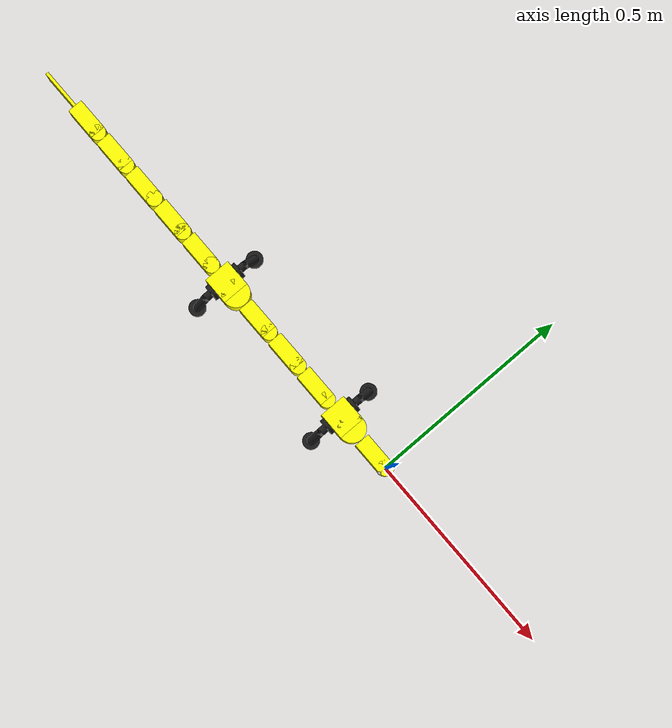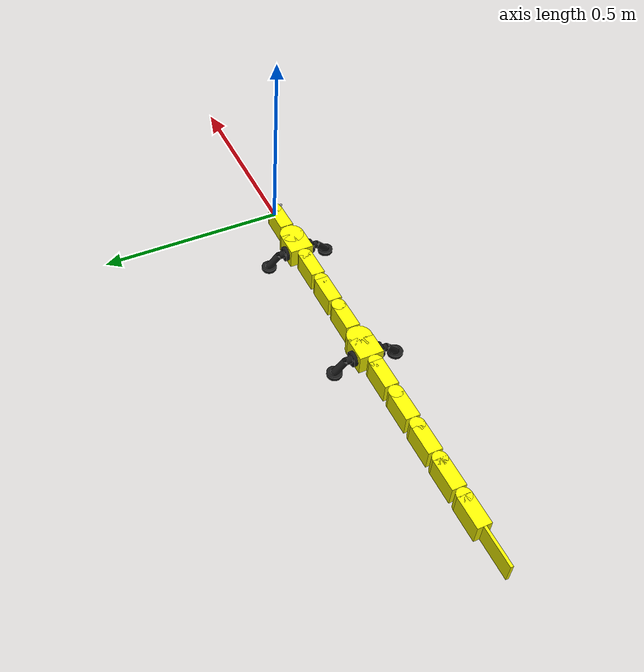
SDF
<?xml version="1.0" ?>
<sdf version="1.6">
<world>
  <model name="salamandra_robotica">
    <pose>0.0 0.0 0.0 0.0 0.0 0.0</pose>
    <link name="link_body_0">
      <pose>-0.0 0.0 0.0 0.0 0.0 0.0</pose>
      <inertial>
        <pose>0.0 0.0 0.0 0.0 0.0 0.0</pose>
        <mass>0.167578125</mass>
        <inertia>
          <ixx>6.188171386718749e-05</ixx>
          <ixy>0</ixy>
          <ixz>0</ixz>
          <iyy>0.00013443344116210939</iyy>
          <iyz>0</iyz>
          <izz>0.00011182785034179688</izz>
        </inertia>
      </inertial>
      <collision name="link_body_0_box_collision">
        <pose>-0.040625 0.0 0.0 0.0 0.0 0.0</pose>
        <geometry>
          <box>
            <size>0.08125 0.0375 0.055</size>
          </box>
        </geometry>
      </collision>
      <collision name="link_body_0_cylinder_collision">
        <pose>0.0 0.0 0.0 0.0 0.0 0.0</pose>
        <geometry>
          <cylinder>
            <radius>0.01875 0.0 0.0</radius>
            <length>0.055 0.0 0.0</length>
          </cylinder>
        </geometry>
      </collision>
      <visual name="link_body_0_box_visual">
        <pose>-0.040625 0.0 0.0 0.0 0.0 0.0</pose>
        <geometry>
          <box>
            <size>0.08125 0.0375 0.055</size>
          </box>
        </geometry>
        <material>
          <ambient>1.0 1.0 0.0 1.0</ambient>
          <diffuse>1.0 1.0 0.0 1.0</diffuse>
          <specular>1.0 1.0 0.0 1.0</specular>
          <emissive>1.0 1.0 0.0 1.0</emissive>
        </material>
      </visual>
      <visual name="link_body_0_cylinder_visual">
        <pose>0.0 0.0 0.0 0.0 0.0 0.0</pose>
        <geometry>
          <cylinder>
            <radius>0.01875 0.0 0.0</radius>
            <length>0.055 0.0 0.0</length>
          </cylinder>
        </geometry>
        <material>
          <ambient>1.0 1.0 0.0 1.0</ambient>
          <diffuse>1.0 1.0 0.0 1.0</diffuse>
          <specular>1.0 1.0 0.0 1.0</specular>
          <emissive>1.0 1.0 0.0 1.0</emissive>
        </material>
      </visual>
    </link>
    <link name="link_body_1">
      <pose>-0.115 0.0 0.0 0.0 0.0 0.0</pose>
      <inertial>
        <pose>0.0 0.0 0.0 0.0 0.0 0.0</pose>
        <mass>0.24250488281250004</mass>
        <inertia>
          <ixx>0.00014816322088241578</ixx>
          <ixy>0</ixy>
          <ixz>0</ixz>
          <iyy>0.0001523569291830063</iyy>
          <iyz>0</iyz>
          <izz>0.00017825727164745336</izz>
        </inertia>
      </inertial>
      <collision name="link_body_1_box_collision">
        <pose>-0.033593750000000006 0.0 0.0 0.0 0.0 0.0</pose>
        <geometry>
          <box>
            <size>0.06718750000000001 0.065625 0.055</size>
          </box>
        </geometry>
      </collision>
      <collision name="link_body_1_cylinder_collision">
        <pose>0.0 0.0 0.0 0.0 0.0 0.0</pose>
        <geometry>
          <cylinder>
            <radius>0.0328125 0.0 0.0</radius>
            <length>0.055 0.0 0.0</length>
          </cylinder>
        </geometry>
      </collision>
      <visual name="link_body_1_box_visual">
        <pose>-0.033593750000000006 0.0 0.0 0.0 0.0 0.0</pose>
        <geometry>
          <box>
            <size>0.06718750000000001 0.065625 0.055</size>
          </box>
        </geometry>
        <material>
          <ambient>1.0 1.0 0.0 1.0</ambient>
          <diffuse>1.0 1.0 0.0 1.0</diffuse>
          <specular>1.0 1.0 0.0 1.0</specular>
          <emissive>1.0 1.0 0.0 1.0</emissive>
        </material>
      </visual>
      <visual name="link_body_1_cylinder_visual">
        <pose>0.0 0.0 0.0 0.0 0.0 0.0</pose>
        <geometry>
          <cylinder>
            <radius>0.0328125 0.0 0.0</radius>
            <length>0.055 0.0 0.0</length>
          </cylinder>
        </geometry>
        <material>
          <ambient>1.0 1.0 0.0 1.0</ambient>
          <diffuse>1.0 1.0 0.0 1.0</diffuse>
          <specular>1.0 1.0 0.0 1.0</specular>
          <emissive>1.0 1.0 0.0 1.0</emissive>
        </material>
      </visual>
    </link>
    <link name="link_body_2">
      <pose>-0.2 0.0 0.0 0.0 0.0 0.0</pose>
      <inertial>
        <pose>0.0 0.0 0.0 0.0 0.0 0.0</pose>
        <mass>0.167578125</mass>
        <inertia>
          <ixx>6.188171386718749e-05</ixx>
          <ixy>0</ixy>
          <ixz>0</ixz>
          <iyy>0.00013443344116210939</iyy>
          <iyz>0</iyz>
          <izz>0.00011182785034179688</izz>
        </inertia>
      </inertial>
      <collision name="link_body_2_box_collision">
        <pose>-0.040625 0.0 0.0 0.0 0.0 0.0</pose>
        <geometry>
          <box>
            <size>0.08125 0.0375 0.055</size>
          </box>
        </geometry>
      </collision>
      <collision name="link_body_2_cylinder_collision">
        <pose>0.0 0.0 0.0 0.0 0.0 0.0</pose>
        <geometry>
          <cylinder>
            <radius>0.01875 0.0 0.0</radius>
            <length>0.055 0.0 0.0</length>
          </cylinder>
        </geometry>
      </collision>
      <visual name="link_body_2_box_visual">
        <pose>-0.040625 0.0 0.0 0.0 0.0 0.0</pose>
        <geometry>
          <box>
            <size>0.08125 0.0375 0.055</size>
          </box>
        </geometry>
        <material>
          <ambient>1.0 1.0 0.0 1.0</ambient>
          <diffuse>1.0 1.0 0.0 1.0</diffuse>
          <specular>1.0 1.0 0.0 1.0</specular>
          <emissive>1.0 1.0 0.0 1.0</emissive>
        </material>
      </visual>
      <visual name="link_body_2_cylinder_visual">
        <pose>0.0 0.0 0.0 0.0 0.0 0.0</pose>
        <geometry>
          <cylinder>
            <radius>0.01875 0.0 0.0</radius>
            <length>0.055 0.0 0.0</length>
          </cylinder>
        </geometry>
        <material>
          <ambient>1.0 1.0 0.0 1.0</ambient>
          <diffuse>1.0 1.0 0.0 1.0</diffuse>
          <specular>1.0 1.0 0.0 1.0</specular>
          <emissive>1.0 1.0 0.0 1.0</emissive>
        </material>
      </visual>
    </link>
    <link name="link_body_3">
      <pose>-0.30000000000000004 0.0 0.0 0.0 0.0 0.0</pose>
      <inertial>
        <pose>0.0 0.0 0.0 0.0 0.0 0.0</pose>
        <mass>0.167578125</mass>
        <inertia>
          <ixx>6.188171386718749e-05</ixx>
          <ixy>0</ixy>
          <ixz>0</ixz>
          <iyy>0.00013443344116210939</iyy>
          <iyz>0</iyz>
          <izz>0.00011182785034179688</izz>
        </inertia>
      </inertial>
      <collision name="link_body_3_box_collision">
        <pose>-0.040625 0.0 0.0 0.0 0.0 0.0</pose>
        <geometry>
          <box>
            <size>0.08125 0.0375 0.055</size>
          </box>
        </geometry>
      </collision>
      <collision name="link_body_3_cylinder_collision">
        <pose>0.0 0.0 0.0 0.0 0.0 0.0</pose>
        <geometry>
          <cylinder>
            <radius>0.01875 0.0 0.0</radius>
            <length>0.055 0.0 0.0</length>
          </cylinder>
        </geometry>
      </collision>
      <visual name="link_body_3_box_visual">
        <pose>-0.040625 0.0 0.0 0.0 0.0 0.0</pose>
        <geometry>
          <box>
            <size>0.08125 0.0375 0.055</size>
          </box>
        </geometry>
        <material>
          <ambient>1.0 1.0 0.0 1.0</ambient>
          <diffuse>1.0 1.0 0.0 1.0</diffuse>
          <specular>1.0 1.0 0.0 1.0</specular>
          <emissive>1.0 1.0 0.0 1.0</emissive>
        </material>
      </visual>
      <visual name="link_body_3_cylinder_visual">
        <pose>0.0 0.0 0.0 0.0 0.0 0.0</pose>
        <geometry>
          <cylinder>
            <radius>0.01875 0.0 0.0</radius>
            <length>0.055 0.0 0.0</length>
          </cylinder>
        </geometry>
        <material>
          <ambient>1.0 1.0 0.0 1.0</ambient>
          <diffuse>1.0 1.0 0.0 1.0</diffuse>
          <specular>1.0 1.0 0.0 1.0</specular>
          <emissive>1.0 1.0 0.0 1.0</emissive>
        </material>
      </visual>
    </link>
    <link name="link_body_4">
      <pose>-0.4 0.0 0.0 0.0 0.0 0.0</pose>
      <inertial>
        <pose>0.0 0.0 0.0 0.0 0.0 0.0</pose>
        <mass>0.167578125</mass>
        <inertia>
          <ixx>6.188171386718749e-05</ixx>
          <ixy>0</ixy>
          <ixz>0</ixz>
          <iyy>0.00013443344116210939</iyy>
          <iyz>0</iyz>
          <izz>0.00011182785034179688</izz>
        </inertia>
      </inertial>
      <collision name="link_body_4_box_collision">
        <pose>-0.040625 0.0 0.0 0.0 0.0 0.0</pose>
        <geometry>
          <box>
            <size>0.08125 0.0375 0.055</size>
          </box>
        </geometry>
      </collision>
      <collision name="link_body_4_cylinder_collision">
        <pose>0.0 0.0 0.0 0.0 0.0 0.0</pose>
        <geometry>
          <cylinder>
            <radius>0.01875 0.0 0.0</radius>
            <length>0.055 0.0 0.0</length>
          </cylinder>
        </geometry>
      </collision>
      <visual name="link_body_4_box_visual">
        <pose>-0.040625 0.0 0.0 0.0 0.0 0.0</pose>
        <geometry>
          <box>
            <size>0.08125 0.0375 0.055</size>
          </box>
        </geometry>
        <material>
          <ambient>1.0 1.0 0.0 1.0</ambient>
          <diffuse>1.0 1.0 0.0 1.0</diffuse>
          <specular>1.0 1.0 0.0 1.0</specular>
          <emissive>1.0 1.0 0.0 1.0</emissive>
        </material>
      </visual>
      <visual name="link_body_4_cylinder_visual">
        <pose>0.0 0.0 0.0 0.0 0.0 0.0</pose>
        <geometry>
          <cylinder>
            <radius>0.01875 0.0 0.0</radius>
            <length>0.055 0.0 0.0</length>
          </cylinder>
        </geometry>
        <material>
          <ambient>1.0 1.0 0.0 1.0</ambient>
          <diffuse>1.0 1.0 0.0 1.0</diffuse>
          <specular>1.0 1.0 0.0 1.0</specular>
          <emissive>1.0 1.0 0.0 1.0</emissive>
        </material>
      </visual>
    </link>
    <link name="link_body_5">
      <pose>-0.515 0.0 0.0 0.0 0.0 0.0</pose>
      <inertial>
        <pose>0.0 0.0 0.0 0.0 0.0 0.0</pose>
        <mass>0.24250488281250004</mass>
        <inertia>
          <ixx>0.00014816322088241578</ixx>
          <ixy>0</ixy>
          <ixz>0</ixz>
          <iyy>0.0001523569291830063</iyy>
          <iyz>0</iyz>
          <izz>0.00017825727164745336</izz>
        </inertia>
      </inertial>
      <collision name="link_body_5_box_collision">
        <pose>-0.033593750000000006 0.0 0.0 0.0 0.0 0.0</pose>
        <geometry>
          <box>
            <size>0.06718750000000001 0.065625 0.055</size>
          </box>
        </geometry>
      </collision>
      <collision name="link_body_5_cylinder_collision">
        <pose>0.0 0.0 0.0 0.0 0.0 0.0</pose>
        <geometry>
          <cylinder>
            <radius>0.0328125 0.0 0.0</radius>
            <length>0.055 0.0 0.0</length>
          </cylinder>
        </geometry>
      </collision>
      <visual name="link_body_5_box_visual">
        <pose>-0.033593750000000006 0.0 0.0 0.0 0.0 0.0</pose>
        <geometry>
          <box>
            <size>0.06718750000000001 0.065625 0.055</size>
          </box>
        </geometry>
        <material>
          <ambient>1.0 1.0 0.0 1.0</ambient>
          <diffuse>1.0 1.0 0.0 1.0</diffuse>
          <specular>1.0 1.0 0.0 1.0</specular>
          <emissive>1.0 1.0 0.0 1.0</emissive>
        </material>
      </visual>
      <visual name="link_body_5_cylinder_visual">
        <pose>0.0 0.0 0.0 0.0 0.0 0.0</pose>
        <geometry>
          <cylinder>
            <radius>0.0328125 0.0 0.0</radius>
            <length>0.055 0.0 0.0</length>
          </cylinder>
        </geometry>
        <material>
          <ambient>1.0 1.0 0.0 1.0</ambient>
          <diffuse>1.0 1.0 0.0 1.0</diffuse>
          <specular>1.0 1.0 0.0 1.0</specular>
          <emissive>1.0 1.0 0.0 1.0</emissive>
        </material>
      </visual>
    </link>
    <link name="link_body_6">
      <pose>-0.6000000000000001 0.0 0.0 0.0 0.0 0.0</pose>
      <inertial>
        <pose>0.0 0.0 0.0 0.0 0.0 0.0</pose>
        <mass>0.167578125</mass>
        <inertia>
          <ixx>6.188171386718749e-05</ixx>
          <ixy>0</ixy>
          <ixz>0</ixz>
          <iyy>0.00013443344116210939</iyy>
          <iyz>0</iyz>
          <izz>0.00011182785034179688</izz>
        </inertia>
      </inertial>
      <collision name="link_body_6_box_collision">
        <pose>-0.040625 0.0 0.0 0.0 0.0 0.0</pose>
        <geometry>
          <box>
            <size>0.08125 0.0375 0.055</size>
          </box>
        </geometry>
      </collision>
      <collision name="link_body_6_cylinder_collision">
        <pose>0.0 0.0 0.0 0.0 0.0 0.0</pose>
        <geometry>
          <cylinder>
            <radius>0.01875 0.0 0.0</radius>
            <length>0.055 0.0 0.0</length>
          </cylinder>
        </geometry>
      </collision>
      <visual name="link_body_6_box_visual">
        <pose>-0.040625 0.0 0.0 0.0 0.0 0.0</pose>
        <geometry>
          <box>
            <size>0.08125 0.0375 0.055</size>
          </box>
        </geometry>
        <material>
          <ambient>1.0 1.0 0.0 1.0</ambient>
          <diffuse>1.0 1.0 0.0 1.0</diffuse>
          <specular>1.0 1.0 0.0 1.0</specular>
          <emissive>1.0 1.0 0.0 1.0</emissive>
        </material>
      </visual>
      <visual name="link_body_6_cylinder_visual">
        <pose>0.0 0.0 0.0 0.0 0.0 0.0</pose>
        <geometry>
          <cylinder>
            <radius>0.01875 0.0 0.0</radius>
            <length>0.055 0.0 0.0</length>
          </cylinder>
        </geometry>
        <material>
          <ambient>1.0 1.0 0.0 1.0</ambient>
          <diffuse>1.0 1.0 0.0 1.0</diffuse>
          <specular>1.0 1.0 0.0 1.0</specular>
          <emissive>1.0 1.0 0.0 1.0</emissive>
        </material>
      </visual>
    </link>
    <link name="link_body_7">
      <pose>-0.7000000000000001 0.0 0.0 0.0 0.0 0.0</pose>
      <inertial>
        <pose>0.0 0.0 0.0 0.0 0.0 0.0</pose>
        <mass>0.167578125</mass>
        <inertia>
          <ixx>6.188171386718749e-05</ixx>
          <ixy>0</ixy>
          <ixz>0</ixz>
          <iyy>0.00013443344116210939</iyy>
          <iyz>0</iyz>
          <izz>0.00011182785034179688</izz>
        </inertia>
      </inertial>
      <collision name="link_body_7_box_collision">
        <pose>-0.040625 0.0 0.0 0.0 0.0 0.0</pose>
        <geometry>
          <box>
            <size>0.08125 0.0375 0.055</size>
          </box>
        </geometry>
      </collision>
      <collision name="link_body_7_cylinder_collision">
        <pose>0.0 0.0 0.0 0.0 0.0 0.0</pose>
        <geometry>
          <cylinder>
            <radius>0.01875 0.0 0.0</radius>
            <length>0.055 0.0 0.0</length>
          </cylinder>
        </geometry>
      </collision>
      <visual name="link_body_7_box_visual">
        <pose>-0.040625 0.0 0.0 0.0 0.0 0.0</pose>
        <geometry>
          <box>
            <size>0.08125 0.0375 0.055</size>
          </box>
        </geometry>
        <material>
          <ambient>1.0 1.0 0.0 1.0</ambient>
          <diffuse>1.0 1.0 0.0 1.0</diffuse>
          <specular>1.0 1.0 0.0 1.0</specular>
          <emissive>1.0 1.0 0.0 1.0</emissive>
        </material>
      </visual>
      <visual name="link_body_7_cylinder_visual">
        <pose>0.0 0.0 0.0 0.0 0.0 0.0</pose>
        <geometry>
          <cylinder>
            <radius>0.01875 0.0 0.0</radius>
            <length>0.055 0.0 0.0</length>
          </cylinder>
        </geometry>
        <material>
          <ambient>1.0 1.0 0.0 1.0</ambient>
          <diffuse>1.0 1.0 0.0 1.0</diffuse>
          <specular>1.0 1.0 0.0 1.0</specular>
          <emissive>1.0 1.0 0.0 1.0</emissive>
        </material>
      </visual>
    </link>
    <link name="link_body_8">
      <pose>-0.8 0.0 0.0 0.0 0.0 0.0</pose>
      <inertial>
        <pose>0.0 0.0 0.0 0.0 0.0 0.0</pose>
        <mass>0.167578125</mass>
        <inertia>
          <ixx>6.188171386718749e-05</ixx>
          <ixy>0</ixy>
          <ixz>0</ixz>
          <iyy>0.00013443344116210939</iyy>
          <iyz>0</iyz>
          <izz>0.00011182785034179688</izz>
        </inertia>
      </inertial>
      <collision name="link_body_8_box_collision">
        <pose>-0.040625 0.0 0.0 0.0 0.0 0.0</pose>
        <geometry>
          <box>
            <size>0.08125 0.0375 0.055</size>
          </box>
        </geometry>
      </collision>
      <collision name="link_body_8_cylinder_collision">
        <pose>0.0 0.0 0.0 0.0 0.0 0.0</pose>
        <geometry>
          <cylinder>
            <radius>0.01875 0.0 0.0</radius>
            <length>0.055 0.0 0.0</length>
          </cylinder>
        </geometry>
      </collision>
      <visual name="link_body_8_box_visual">
        <pose>-0.040625 0.0 0.0 0.0 0.0 0.0</pose>
        <geometry>
          <box>
            <size>0.08125 0.0375 0.055</size>
          </box>
        </geometry>
        <material>
          <ambient>1.0 1.0 0.0 1.0</ambient>
          <diffuse>1.0 1.0 0.0 1.0</diffuse>
          <specular>1.0 1.0 0.0 1.0</specular>
          <emissive>1.0 1.0 0.0 1.0</emissive>
        </material>
      </visual>
      <visual name="link_body_8_cylinder_visual">
        <pose>0.0 0.0 0.0 0.0 0.0 0.0</pose>
        <geometry>
          <cylinder>
            <radius>0.01875 0.0 0.0</radius>
            <length>0.055 0.0 0.0</length>
          </cylinder>
        </geometry>
        <material>
          <ambient>1.0 1.0 0.0 1.0</ambient>
          <diffuse>1.0 1.0 0.0 1.0</diffuse>
          <specular>1.0 1.0 0.0 1.0</specular>
          <emissive>1.0 1.0 0.0 1.0</emissive>
        </material>
      </visual>
    </link>
    <link name="link_body_9">
      <pose>-0.9 0.0 0.0 0.0 0.0 0.0</pose>
      <inertial>
        <pose>0.0 0.0 0.0 0.0 0.0 0.0</pose>
        <mass>0.167578125</mass>
        <inertia>
          <ixx>6.188171386718749e-05</ixx>
          <ixy>0</ixy>
          <ixz>0</ixz>
          <iyy>0.00013443344116210939</iyy>
          <iyz>0</iyz>
          <izz>0.00011182785034179688</izz>
        </inertia>
      </inertial>
      <collision name="link_body_9_box_collision">
        <pose>-0.040625 0.0 0.0 0.0 0.0 0.0</pose>
        <geometry>
          <box>
            <size>0.08125 0.0375 0.055</size>
          </box>
        </geometry>
      </collision>
      <collision name="link_body_9_cylinder_collision">
        <pose>0.0 0.0 0.0 0.0 0.0 0.0</pose>
        <geometry>
          <cylinder>
            <radius>0.01875 0.0 0.0</radius>
            <length>0.055 0.0 0.0</length>
          </cylinder>
        </geometry>
      </collision>
      <visual name="link_body_9_box_visual">
        <pose>-0.040625 0.0 0.0 0.0 0.0 0.0</pose>
        <geometry>
          <box>
            <size>0.08125 0.0375 0.055</size>
          </box>
        </geometry>
        <material>
          <ambient>1.0 1.0 0.0 1.0</ambient>
          <diffuse>1.0 1.0 0.0 1.0</diffuse>
          <specular>1.0 1.0 0.0 1.0</specular>
          <emissive>1.0 1.0 0.0 1.0</emissive>
        </material>
      </visual>
      <visual name="link_body_9_cylinder_visual">
        <pose>0.0 0.0 0.0 0.0 0.0 0.0</pose>
        <geometry>
          <cylinder>
            <radius>0.01875 0.0 0.0</radius>
            <length>0.055 0.0 0.0</length>
          </cylinder>
        </geometry>
        <material>
          <ambient>1.0 1.0 0.0 1.0</ambient>
          <diffuse>1.0 1.0 0.0 1.0</diffuse>
          <specular>1.0 1.0 0.0 1.0</specular>
          <emissive>1.0 1.0 0.0 1.0</emissive>
        </material>
      </visual>
    </link>
    <link name="link_body_10">
      <pose>-1.0 0.0 0.0 0.0 0.0 0.0</pose>
      <inertial>
        <pose>0.0 0.0 0.0 0.0 0.0 0.0</pose>
        <mass>0.167578125</mass>
        <inertia>
          <ixx>6.188171386718749e-05</ixx>
          <ixy>0</ixy>
          <ixz>0</ixz>
          <iyy>0.00013443344116210939</iyy>
          <iyz>0</iyz>
          <izz>0.00011182785034179688</izz>
        </inertia>
      </inertial>
      <collision name="link_body_10_box_collision">
        <pose>-0.040625 0.0 0.0 0.0 0.0 0.0</pose>
        <geometry>
          <box>
            <size>0.08125 0.0375 0.055</size>
          </box>
        </geometry>
      </collision>
      <collision name="link_body_10_cylinder_collision">
        <pose>0.0 0.0 0.0 0.0 0.0 0.0</pose>
        <geometry>
          <cylinder>
            <radius>0.01875 0.0 0.0</radius>
            <length>0.055 0.0 0.0</length>
          </cylinder>
        </geometry>
      </collision>
      <visual name="link_body_10_box_visual">
        <pose>-0.040625 0.0 0.0 0.0 0.0 0.0</pose>
        <geometry>
          <box>
            <size>0.08125 0.0375 0.055</size>
          </box>
        </geometry>
        <material>
          <ambient>1.0 1.0 0.0 1.0</ambient>
          <diffuse>1.0 1.0 0.0 1.0</diffuse>
          <specular>1.0 1.0 0.0 1.0</specular>
          <emissive>1.0 1.0 0.0 1.0</emissive>
        </material>
      </visual>
      <visual name="link_body_10_cylinder_visual">
        <pose>0.0 0.0 0.0 0.0 0.0 0.0</pose>
        <geometry>
          <cylinder>
            <radius>0.01875 0.0 0.0</radius>
            <length>0.055 0.0 0.0</length>
          </cylinder>
        </geometry>
        <material>
          <ambient>1.0 1.0 0.0 1.0</ambient>
          <diffuse>1.0 1.0 0.0 1.0</diffuse>
          <specular>1.0 1.0 0.0 1.0</specular>
          <emissive>1.0 1.0 0.0 1.0</emissive>
        </material>
      </visual>
    </link>
    <link name="link_leg_femur_0_L_0">
      <pose>-0.15500000000000003 -0.0375 0.0 0.0 0.0 0.0</pose>
      <inertial>
        <pose>0 0 0 0 0 0</pose>
        <mass>0.010471975511965978</mass>
        <inertia>
          <ixx>6.108652381980154e-07</ixx>
          <ixy>0</ixy>
          <ixz>0</ixz>
          <iyy>6.108652381980154e-07</iyy>
          <iyz>0</iyz>
          <izz>5.235987755982989e-07</izz>
        </inertia>
      </inertial>
      <collision name="link_leg_femur_0_L_0_hip_collision">
        <pose>0.0 0.0 0.0 -1.5707963267948966 0.0 0.0</pose>
        <geometry>
          <cylinder>
            <radius>0.02 0.0 0.0</radius>
            <length>0.01 0.0 0.0</length>
          </cylinder>
        </geometry>
      </collision>
      <collision name="link_leg_femur_0_L_0_femur_collision">
        <pose>0.0 -0.01 0.0 -1.5707963267948966 0.0 0.0</pose>
        <geometry>
          <capsule>
            <length>0.02 0.0 0.0</length>
            <radius>0.01 0.0 0.0</radius>
          </capsule>
        </geometry>
      </collision>
      <visual name="link_leg_femur_0_L_0_hip_visual">
        <pose>0.0 0.0 0.0 -1.5707963267948966 0.0 0.0</pose>
        <geometry>
          <cylinder>
            <radius>0.02 0.0 0.0</radius>
            <length>0.01 0.0 0.0</length>
          </cylinder>
        </geometry>
        <material>
          <ambient>0.1 0.1 0.1 1.0</ambient>
          <diffuse>0.1 0.1 0.1 1.0</diffuse>
          <specular>0.1 0.1 0.1 1.0</specular>
          <emissive>0.1 0.1 0.1 1.0</emissive>
        </material>
      </visual>
      <visual name="link_leg_femur_0_L_0_femur_visual">
        <pose>0.0 -0.01 0.0 -1.5707963267948966 0.0 0.0</pose>
        <geometry>
          <capsule>
            <length>0.02 0.0 0.0</length>
            <radius>0.01 0.0 0.0</radius>
          </capsule>
        </geometry>
        <material>
          <ambient>0.1 0.1 0.1 1.0</ambient>
          <diffuse>0.1 0.1 0.1 1.0</diffuse>
          <specular>0.1 0.1 0.1 1.0</specular>
          <emissive>0.1 0.1 0.1 1.0</emissive>
        </material>
      </visual>
    </link>
    <link name="link_leg_femur_0_R_0">
      <pose>-0.15500000000000003 0.0375 0.0 0.0 0.0 0.0</pose>
      <inertial>
        <pose>0 0 0 0 0 0</pose>
        <mass>0.010471975511965978</mass>
        <inertia>
          <ixx>6.108652381980154e-07</ixx>
          <ixy>0</ixy>
          <ixz>0</ixz>
          <iyy>6.108652381980154e-07</iyy>
          <iyz>0</iyz>
          <izz>5.235987755982989e-07</izz>
        </inertia>
      </inertial>
      <collision name="link_leg_femur_0_R_0_hip_collision">
        <pose>0.0 0.0 0.0 1.5707963267948966 0.0 0.0</pose>
        <geometry>
          <cylinder>
            <radius>0.02 0.0 0.0</radius>
            <length>0.01 0.0 0.0</length>
          </cylinder>
        </geometry>
      </collision>
      <collision name="link_leg_femur_0_R_0_femur_collision">
        <pose>0.0 0.01 0.0 1.5707963267948966 0.0 0.0</pose>
        <geometry>
          <capsule>
            <length>0.02 0.0 0.0</length>
            <radius>0.01 0.0 0.0</radius>
          </capsule>
        </geometry>
      </collision>
      <visual name="link_leg_femur_0_R_0_hip_visual">
        <pose>0.0 0.0 0.0 1.5707963267948966 0.0 0.0</pose>
        <geometry>
          <cylinder>
            <radius>0.02 0.0 0.0</radius>
            <length>0.01 0.0 0.0</length>
          </cylinder>
        </geometry>
        <material>
          <ambient>0.1 0.1 0.1 1.0</ambient>
          <diffuse>0.1 0.1 0.1 1.0</diffuse>
          <specular>0.1 0.1 0.1 1.0</specular>
          <emissive>0.1 0.1 0.1 1.0</emissive>
        </material>
      </visual>
      <visual name="link_leg_femur_0_R_0_femur_visual">
        <pose>0.0 0.01 0.0 1.5707963267948966 0.0 0.0</pose>
        <geometry>
          <capsule>
            <length>0.02 0.0 0.0</length>
            <radius>0.01 0.0 0.0</radius>
          </capsule>
        </geometry>
        <material>
          <ambient>0.1 0.1 0.1 1.0</ambient>
          <diffuse>0.1 0.1 0.1 1.0</diffuse>
          <specular>0.1 0.1 0.1 1.0</specular>
          <emissive>0.1 0.1 0.1 1.0</emissive>
        </material>
      </visual>
    </link>
    <link name="link_leg_femur_1_L_0">
      <pose>-0.555 -0.0375 0.0 0.0 0.0 0.0</pose>
      <inertial>
        <pose>0 0 0 0 0 0</pose>
        <mass>0.010471975511965978</mass>
        <inertia>
          <ixx>6.108652381980154e-07</ixx>
          <ixy>0</ixy>
          <ixz>0</ixz>
          <iyy>6.108652381980154e-07</iyy>
          <iyz>0</iyz>
          <izz>5.235987755982989e-07</izz>
        </inertia>
      </inertial>
      <collision name="link_leg_femur_1_L_0_hip_collision">
        <pose>0.0 0.0 0.0 -1.5707963267948966 0.0 0.0</pose>
        <geometry>
          <cylinder>
            <radius>0.02 0.0 0.0</radius>
            <length>0.01 0.0 0.0</length>
          </cylinder>
        </geometry>
      </collision>
      <collision name="link_leg_femur_1_L_0_femur_collision">
        <pose>0.0 -0.01 0.0 -1.5707963267948966 0.0 0.0</pose>
        <geometry>
          <capsule>
            <length>0.02 0.0 0.0</length>
            <radius>0.01 0.0 0.0</radius>
          </capsule>
        </geometry>
      </collision>
      <visual name="link_leg_femur_1_L_0_hip_visual">
        <pose>0.0 0.0 0.0 -1.5707963267948966 0.0 0.0</pose>
        <geometry>
          <cylinder>
            <radius>0.02 0.0 0.0</radius>
            <length>0.01 0.0 0.0</length>
          </cylinder>
        </geometry>
        <material>
          <ambient>0.1 0.1 0.1 1.0</ambient>
          <diffuse>0.1 0.1 0.1 1.0</diffuse>
          <specular>0.1 0.1 0.1 1.0</specular>
          <emissive>0.1 0.1 0.1 1.0</emissive>
        </material>
      </visual>
      <visual name="link_leg_femur_1_L_0_femur_visual">
        <pose>0.0 -0.01 0.0 -1.5707963267948966 0.0 0.0</pose>
        <geometry>
          <capsule>
            <length>0.02 0.0 0.0</length>
            <radius>0.01 0.0 0.0</radius>
          </capsule>
        </geometry>
        <material>
          <ambient>0.1 0.1 0.1 1.0</ambient>
          <diffuse>0.1 0.1 0.1 1.0</diffuse>
          <specular>0.1 0.1 0.1 1.0</specular>
          <emissive>0.1 0.1 0.1 1.0</emissive>
        </material>
      </visual>
    </link>
    <link name="link_leg_femur_1_R_0">
      <pose>-0.555 0.0375 0.0 0.0 0.0 0.0</pose>
      <inertial>
        <pose>0 0 0 0 0 0</pose>
        <mass>0.010471975511965978</mass>
        <inertia>
          <ixx>6.108652381980154e-07</ixx>
          <ixy>0</ixy>
          <ixz>0</ixz>
          <iyy>6.108652381980154e-07</iyy>
          <iyz>0</iyz>
          <izz>5.235987755982989e-07</izz>
        </inertia>
      </inertial>
      <collision name="link_leg_femur_1_R_0_hip_collision">
        <pose>0.0 0.0 0.0 1.5707963267948966 0.0 0.0</pose>
        <geometry>
          <cylinder>
            <radius>0.02 0.0 0.0</radius>
            <length>0.01 0.0 0.0</length>
          </cylinder>
        </geometry>
      </collision>
      <collision name="link_leg_femur_1_R_0_femur_collision">
        <pose>0.0 0.01 0.0 1.5707963267948966 0.0 0.0</pose>
        <geometry>
          <capsule>
            <length>0.02 0.0 0.0</length>
            <radius>0.01 0.0 0.0</radius>
          </capsule>
        </geometry>
      </collision>
      <visual name="link_leg_femur_1_R_0_hip_visual">
        <pose>0.0 0.0 0.0 1.5707963267948966 0.0 0.0</pose>
        <geometry>
          <cylinder>
            <radius>0.02 0.0 0.0</radius>
            <length>0.01 0.0 0.0</length>
          </cylinder>
        </geometry>
        <material>
          <ambient>0.1 0.1 0.1 1.0</ambient>
          <diffuse>0.1 0.1 0.1 1.0</diffuse>
          <specular>0.1 0.1 0.1 1.0</specular>
          <emissive>0.1 0.1 0.1 1.0</emissive>
        </material>
      </visual>
      <visual name="link_leg_femur_1_R_0_femur_visual">
        <pose>0.0 0.01 0.0 1.5707963267948966 0.0 0.0</pose>
        <geometry>
          <capsule>
            <length>0.02 0.0 0.0</length>
            <radius>0.01 0.0 0.0</radius>
          </capsule>
        </geometry>
        <material>
          <ambient>0.1 0.1 0.1 1.0</ambient>
          <diffuse>0.1 0.1 0.1 1.0</diffuse>
          <specular>0.1 0.1 0.1 1.0</specular>
          <emissive>0.1 0.1 0.1 1.0</emissive>
        </material>
      </visual>
    </link>
    <link name="link_leg_tibia_0_L_0">
      <pose>-0.15500000000000003 -0.08578427124746191 -0.028284271247461905 0.0 0.0 0.0</pose>
      <inertial>
        <pose>0.0 0.0 0.0 0.0 0.0 0.0</pose>
        <mass>0.016755160819145565</mass>
        <inertia>
          <ixx>2.6529004630313814e-06</ixx>
          <ixy>0</ixy>
          <ixz>0</ixz>
          <iyy>2.6529004630313814e-06</iyy>
          <iyz>0</iyz>
          <izz>8.377580409572783e-07</izz>
        </inertia>
      </inertial>
      <collision name="link_leg_tibia_0_L_0_tibia_collision">
        <pose>0.0 0.014142135623730952 0.014142135623730952 -0.7853981633974483 0.0 0.0</pose>
        <geometry>
          <capsule>
            <length>0.04 0.0 0.0</length>
            <radius>0.01 0.0 0.0</radius>
          </capsule>
        </geometry>
      </collision>
      <collision name="link_leg_tibia_0_L_0_collision">
        <pose>0.0 0.0 -0.005 0.0 0.0 0.0</pose>
        <geometry>
          <cylinder>
            <radius>0.02 0.0 0.0</radius>
            <length>0.01 0.0 0.0</length>
          </cylinder>
        </geometry>
      </collision>
      <visual name="link_leg_tibia_0_L_0_tibia_visual">
        <pose>0.0 0.014142135623730952 0.014142135623730952 -0.7853981633974483 0.0 0.0</pose>
        <geometry>
          <capsule>
            <length>0.04 0.0 0.0</length>
            <radius>0.01 0.0 0.0</radius>
          </capsule>
        </geometry>
        <material>
          <ambient>0.1 0.1 0.1 1.0</ambient>
          <diffuse>0.1 0.1 0.1 1.0</diffuse>
          <specular>0.1 0.1 0.1 1.0</specular>
          <emissive>0.1 0.1 0.1 1.0</emissive>
        </material>
      </visual>
      <visual name="link_leg_tibia_0_L_0_visual">
        <pose>0.0 0.0 -0.005 0.0 0.0 0.0</pose>
        <geometry>
          <cylinder>
            <radius>0.02 0.0 0.0</radius>
            <length>0.01 0.0 0.0</length>
          </cylinder>
        </geometry>
        <material>
          <ambient>0.1 0.1 0.1 1.0</ambient>
          <diffuse>0.1 0.1 0.1 1.0</diffuse>
          <specular>0.1 0.1 0.1 1.0</specular>
          <emissive>0.1 0.1 0.1 1.0</emissive>
        </material>
      </visual>
    </link>
    <link name="link_leg_tibia_0_R_0">
      <pose>-0.15500000000000003 0.08578427124746191 -0.028284271247461905 0.0 0.0 0.0</pose>
      <inertial>
        <pose>0.0 0.0 0.0 0.0 0.0 0.0</pose>
        <mass>0.016755160819145565</mass>
        <inertia>
          <ixx>2.6529004630313814e-06</ixx>
          <ixy>0</ixy>
          <ixz>0</ixz>
          <iyy>2.6529004630313814e-06</iyy>
          <iyz>0</iyz>
          <izz>8.377580409572783e-07</izz>
        </inertia>
      </inertial>
      <collision name="link_leg_tibia_0_R_0_tibia_collision">
        <pose>0.0 -0.014142135623730952 0.014142135623730952 0.7853981633974483 0.0 0.0</pose>
        <geometry>
          <capsule>
            <length>0.04 0.0 0.0</length>
            <radius>0.01 0.0 0.0</radius>
          </capsule>
        </geometry>
      </collision>
      <collision name="link_leg_tibia_0_R_0_collision">
        <pose>0.0 0.0 -0.005 0.0 0.0 0.0</pose>
        <geometry>
          <cylinder>
            <radius>0.02 0.0 0.0</radius>
            <length>0.01 0.0 0.0</length>
          </cylinder>
        </geometry>
      </collision>
      <visual name="link_leg_tibia_0_R_0_tibia_visual">
        <pose>0.0 -0.014142135623730952 0.014142135623730952 0.7853981633974483 0.0 0.0</pose>
        <geometry>
          <capsule>
            <length>0.04 0.0 0.0</length>
            <radius>0.01 0.0 0.0</radius>
          </capsule>
        </geometry>
        <material>
          <ambient>0.1 0.1 0.1 1.0</ambient>
          <diffuse>0.1 0.1 0.1 1.0</diffuse>
          <specular>0.1 0.1 0.1 1.0</specular>
          <emissive>0.1 0.1 0.1 1.0</emissive>
        </material>
      </visual>
      <visual name="link_leg_tibia_0_R_0_visual">
        <pose>0.0 0.0 -0.005 0.0 0.0 0.0</pose>
        <geometry>
          <cylinder>
            <radius>0.02 0.0 0.0</radius>
            <length>0.01 0.0 0.0</length>
          </cylinder>
        </geometry>
        <material>
          <ambient>0.1 0.1 0.1 1.0</ambient>
          <diffuse>0.1 0.1 0.1 1.0</diffuse>
          <specular>0.1 0.1 0.1 1.0</specular>
          <emissive>0.1 0.1 0.1 1.0</emissive>
        </material>
      </visual>
    </link>
    <link name="link_leg_tibia_1_L_0">
      <pose>-0.555 -0.08578427124746191 -0.028284271247461905 0.0 0.0 0.0</pose>
      <inertial>
        <pose>0.0 0.0 0.0 0.0 0.0 0.0</pose>
        <mass>0.016755160819145565</mass>
        <inertia>
          <ixx>2.6529004630313814e-06</ixx>
          <ixy>0</ixy>
          <ixz>0</ixz>
          <iyy>2.6529004630313814e-06</iyy>
          <iyz>0</iyz>
          <izz>8.377580409572783e-07</izz>
        </inertia>
      </inertial>
      <collision name="link_leg_tibia_1_L_0_tibia_collision">
        <pose>0.0 0.014142135623730952 0.014142135623730952 -0.7853981633974483 0.0 0.0</pose>
        <geometry>
          <capsule>
            <length>0.04 0.0 0.0</length>
            <radius>0.01 0.0 0.0</radius>
          </capsule>
        </geometry>
      </collision>
      <collision name="link_leg_tibia_1_L_0_collision">
        <pose>0.0 0.0 -0.005 0.0 0.0 0.0</pose>
        <geometry>
          <cylinder>
            <radius>0.02 0.0 0.0</radius>
            <length>0.01 0.0 0.0</length>
          </cylinder>
        </geometry>
      </collision>
      <visual name="link_leg_tibia_1_L_0_tibia_visual">
        <pose>0.0 0.014142135623730952 0.014142135623730952 -0.7853981633974483 0.0 0.0</pose>
        <geometry>
          <capsule>
            <length>0.04 0.0 0.0</length>
            <radius>0.01 0.0 0.0</radius>
          </capsule>
        </geometry>
        <material>
          <ambient>0.1 0.1 0.1 1.0</ambient>
          <diffuse>0.1 0.1 0.1 1.0</diffuse>
          <specular>0.1 0.1 0.1 1.0</specular>
          <emissive>0.1 0.1 0.1 1.0</emissive>
        </material>
      </visual>
      <visual name="link_leg_tibia_1_L_0_visual">
        <pose>0.0 0.0 -0.005 0.0 0.0 0.0</pose>
        <geometry>
          <cylinder>
            <radius>0.02 0.0 0.0</radius>
            <length>0.01 0.0 0.0</length>
          </cylinder>
        </geometry>
        <material>
          <ambient>0.1 0.1 0.1 1.0</ambient>
          <diffuse>0.1 0.1 0.1 1.0</diffuse>
          <specular>0.1 0.1 0.1 1.0</specular>
          <emissive>0.1 0.1 0.1 1.0</emissive>
        </material>
      </visual>
    </link>
    <link name="link_leg_tibia_1_R_0">
      <pose>-0.555 0.08578427124746191 -0.028284271247461905 0.0 0.0 0.0</pose>
      <inertial>
        <pose>0.0 0.0 0.0 0.0 0.0 0.0</pose>
        <mass>0.016755160819145565</mass>
        <inertia>
          <ixx>2.6529004630313814e-06</ixx>
          <ixy>0</ixy>
          <ixz>0</ixz>
          <iyy>2.6529004630313814e-06</iyy>
          <iyz>0</iyz>
          <izz>8.377580409572783e-07</izz>
        </inertia>
      </inertial>
      <collision name="link_leg_tibia_1_R_0_tibia_collision">
        <pose>0.0 -0.014142135623730952 0.014142135623730952 0.7853981633974483 0.0 0.0</pose>
        <geometry>
          <capsule>
            <length>0.04 0.0 0.0</length>
            <radius>0.01 0.0 0.0</radius>
          </capsule>
        </geometry>
      </collision>
      <collision name="link_leg_tibia_1_R_0_collision">
        <pose>0.0 0.0 -0.005 0.0 0.0 0.0</pose>
        <geometry>
          <cylinder>
            <radius>0.02 0.0 0.0</radius>
            <length>0.01 0.0 0.0</length>
          </cylinder>
        </geometry>
      </collision>
      <visual name="link_leg_tibia_1_R_0_tibia_visual">
        <pose>0.0 -0.014142135623730952 0.014142135623730952 0.7853981633974483 0.0 0.0</pose>
        <geometry>
          <capsule>
            <length>0.04 0.0 0.0</length>
            <radius>0.01 0.0 0.0</radius>
          </capsule>
        </geometry>
        <material>
          <ambient>0.1 0.1 0.1 1.0</ambient>
          <diffuse>0.1 0.1 0.1 1.0</diffuse>
          <specular>0.1 0.1 0.1 1.0</specular>
          <emissive>0.1 0.1 0.1 1.0</emissive>
        </material>
      </visual>
      <visual name="link_leg_tibia_1_R_0_visual">
        <pose>0.0 0.0 -0.005 0.0 0.0 0.0</pose>
        <geometry>
          <cylinder>
            <radius>0.02 0.0 0.0</radius>
            <length>0.01 0.0 0.0</length>
          </cylinder>
        </geometry>
        <material>
          <ambient>0.1 0.1 0.1 1.0</ambient>
          <diffuse>0.1 0.1 0.1 1.0</diffuse>
          <specular>0.1 0.1 0.1 1.0</specular>
          <emissive>0.1 0.1 0.1 1.0</emissive>
        </material>
      </visual>
    </link>
    <link name="eyes">
      <pose>0.0 0.0 0.0 0.0 0.0 0.0</pose>
      <inertial>
        <pose>0 0 0 0 0 0</pose>
        <mass>0</mass>
        <inertia>
          <ixx>0</ixx>
          <ixy>0</ixy>
          <ixz>0</ixz>
          <iyy>0</iyy>
          <iyz>0</iyz>
          <izz>0</izz>
        </inertia>
      </inertial>
      <visual name="eyes_left_visual">
        <pose>0.0 -0.01875 0.03125 0.0 0.0 0.0</pose>
        <geometry>
          <sphere>
            <radius>0.00375 0.0 0.0</radius>
          </sphere>
        </geometry>
        <material/>
      </visual>
      <visual name="eyes_right_visual">
        <pose>0.0 0.01875 0.03125 0.0 0.0 0.0</pose>
        <geometry>
          <sphere>
            <radius>0.00375 0.0 0.0</radius>
          </sphere>
        </geometry>
        <material>
          <ambient>0.0 0.0 0.0 1.0</ambient>
          <diffuse>0.0 0.0 0.0 1.0</diffuse>
          <specular>0.0 0.0 0.0 1.0</specular>
          <emissive>0.0 0.0 0.0 1.0</emissive>
        </material>
      </visual>
    </link>
    <link name="tail">
      <pose>-1.0 0.0 0.0 0.0 0.0 0.0</pose>
      <inertial>
        <pose>0.0 0.0 0.0 0.0 0.0 0.0</pose>
        <mass>0.04125</mass>
        <inertia>
          <ixx>1.0591796875e-05</ixx>
          <ixy>0</ixy>
          <ixz>0</ixz>
          <iyy>4.477343750000001e-05</iyy>
          <iyz>0</iyz>
          <izz>3.456835937500001e-05</izz>
        </inertia>
      </inertial>
      <collision name="tail_collision">
        <pose>-0.13125 0.0 0.0 0.0 0.0 0.0</pose>
        <geometry>
          <box>
            <size>0.1 0.0075 0.055</size>
          </box>
        </geometry>
      </collision>
      <visual name="tail_visual">
        <pose>-0.13125 0.0 0.0 0.0 0.0 0.0</pose>
        <geometry>
          <box>
            <size>0.1 0.0075 0.055</size>
          </box>
        </geometry>
        <material>
          <ambient>1.0 1.0 0.0 1.0</ambient>
          <diffuse>1.0 1.0 0.0 1.0</diffuse>
          <specular>1.0 1.0 0.0 1.0</specular>
          <emissive>1.0 1.0 0.0 1.0</emissive>
        </material>
      </visual>
    </link>
    <joint name="joint_body_0" type="revolute">
      <parent>link_body_0</parent>
      <child>link_body_1</child>
      <pose>0.0 0.0 0.0 0.0 0.0 0.0</pose>
      <axis>
        <xyz>0 0 1</xyz>
        <limit>
          <lower>-1.5707963267948966</lower>
          <upper>1.5707963267948966</upper>
          <effort>2</effort>
          <velocity>628.3185307179587</velocity>
        </limit>
      </axis>
    </joint>
    <joint name="joint_body_1" type="revolute">
      <parent>link_body_1</parent>
      <child>link_body_2</child>
      <pose>0.0 0.0 0.0 0.0 0.0 0.0</pose>
      <axis>
        <xyz>0 0 1</xyz>
        <limit>
          <lower>-1.5707963267948966</lower>
          <upper>1.5707963267948966</upper>
          <effort>2</effort>
          <velocity>628.3185307179587</velocity>
        </limit>
      </axis>
    </joint>
    <joint name="joint_body_2" type="revolute">
      <parent>link_body_2</parent>
      <child>link_body_3</child>
      <pose>0.0 0.0 0.0 0.0 0.0 0.0</pose>
      <axis>
        <xyz>0 0 1</xyz>
        <limit>
          <lower>-1.5707963267948966</lower>
          <upper>1.5707963267948966</upper>
          <effort>2</effort>
          <velocity>628.3185307179587</velocity>
        </limit>
      </axis>
    </joint>
    <joint name="joint_body_3" type="revolute">
      <parent>link_body_3</parent>
      <child>link_body_4</child>
      <pose>0.0 0.0 0.0 0.0 0.0 0.0</pose>
      <axis>
        <xyz>0 0 1</xyz>
        <limit>
          <lower>-1.5707963267948966</lower>
          <upper>1.5707963267948966</upper>
          <effort>2</effort>
          <velocity>628.3185307179587</velocity>
        </limit>
      </axis>
    </joint>
    <joint name="joint_body_4" type="revolute">
      <parent>link_body_4</parent>
      <child>link_body_5</child>
      <pose>0.0 0.0 0.0 0.0 0.0 0.0</pose>
      <axis>
        <xyz>0 0 1</xyz>
        <limit>
          <lower>-1.5707963267948966</lower>
          <upper>1.5707963267948966</upper>
          <effort>2</effort>
          <velocity>628.3185307179587</velocity>
        </limit>
      </axis>
    </joint>
    <joint name="joint_body_5" type="revolute">
      <parent>link_body_5</parent>
      <child>link_body_6</child>
      <pose>0.0 0.0 0.0 0.0 0.0 0.0</pose>
      <axis>
        <xyz>0 0 1</xyz>
        <limit>
          <lower>-1.5707963267948966</lower>
          <upper>1.5707963267948966</upper>
          <effort>2</effort>
          <velocity>628.3185307179587</velocity>
        </limit>
      </axis>
    </joint>
    <joint name="joint_body_6" type="revolute">
      <parent>link_body_6</parent>
      <child>link_body_7</child>
      <pose>0.0 0.0 0.0 0.0 0.0 0.0</pose>
      <axis>
        <xyz>0 0 1</xyz>
        <limit>
          <lower>-1.5707963267948966</lower>
          <upper>1.5707963267948966</upper>
          <effort>2</effort>
          <velocity>628.3185307179587</velocity>
        </limit>
      </axis>
    </joint>
    <joint name="joint_body_7" type="revolute">
      <parent>link_body_7</parent>
      <child>link_body_8</child>
      <pose>0.0 0.0 0.0 0.0 0.0 0.0</pose>
      <axis>
        <xyz>0 0 1</xyz>
        <limit>
          <lower>-1.5707963267948966</lower>
          <upper>1.5707963267948966</upper>
          <effort>2</effort>
          <velocity>628.3185307179587</velocity>
        </limit>
      </axis>
    </joint>
    <joint name="joint_body_8" type="revolute">
      <parent>link_body_8</parent>
      <child>link_body_9</child>
      <pose>0.0 0.0 0.0 0.0 0.0 0.0</pose>
      <axis>
        <xyz>0 0 1</xyz>
        <limit>
          <lower>-1.5707963267948966</lower>
          <upper>1.5707963267948966</upper>
          <effort>2</effort>
          <velocity>628.3185307179587</velocity>
        </limit>
      </axis>
    </joint>
    <joint name="joint_body_9" type="revolute">
      <parent>link_body_9</parent>
      <child>link_body_10</child>
      <pose>0.0 0.0 0.0 0.0 0.0 0.0</pose>
      <axis>
        <xyz>0 0 1</xyz>
        <limit>
          <lower>-1.5707963267948966</lower>
          <upper>1.5707963267948966</upper>
          <effort>2</effort>
          <velocity>628.3185307179587</velocity>
        </limit>
      </axis>
    </joint>
    <joint name="joint_leg_tibia_0_L_0" type="continuous">
      <parent>link_body_1</parent>
      <child>link_leg_femur_0_L_0</child>
      <pose>0.0 0.0 0.0 0.0 0.0 0.0</pose>
      <axis>
        <xyz>0 1 0</xyz>
        <limit>
          <lower>-1.5707963267948966</lower>
          <upper>1.5707963267948966</upper>
          <effort>2</effort>
          <velocity>628.3185307179587</velocity>
        </limit>
      </axis>
    </joint>
    <joint name="joint_leg_tibia_0_R_0" type="continuous">
      <parent>link_body_1</parent>
      <child>link_leg_femur_0_R_0</child>
      <pose>0.0 0.0 0.0 0.0 0.0 0.0</pose>
      <axis>
        <xyz>0 1 0</xyz>
        <limit>
          <lower>-1.5707963267948966</lower>
          <upper>1.5707963267948966</upper>
          <effort>2</effort>
          <velocity>628.3185307179587</velocity>
        </limit>
      </axis>
    </joint>
    <joint name="joint_leg_tibia_1_L_0" type="continuous">
      <parent>link_body_5</parent>
      <child>link_leg_femur_1_L_0</child>
      <pose>0.0 0.0 0.0 0.0 0.0 0.0</pose>
      <axis>
        <xyz>0 1 0</xyz>
        <limit>
          <lower>-1.5707963267948966</lower>
          <upper>1.5707963267948966</upper>
          <effort>2</effort>
          <velocity>628.3185307179587</velocity>
        </limit>
      </axis>
    </joint>
    <joint name="joint_leg_tibia_1_R_0" type="continuous">
      <parent>link_body_5</parent>
      <child>link_leg_femur_1_R_0</child>
      <pose>0.0 0.0 0.0 0.0 0.0 0.0</pose>
      <axis>
        <xyz>0 1 0</xyz>
        <limit>
          <lower>-1.5707963267948966</lower>
          <upper>1.5707963267948966</upper>
          <effort>2</effort>
          <velocity>628.3185307179587</velocity>
        </limit>
      </axis>
    </joint>
    <joint name="joint_leg_dummy_0_L_0_dummy" type="fixed">
      <parent>link_leg_femur_0_L_0</parent>
      <child>link_leg_tibia_0_L_0</child>
      <pose>0.0 0.0 0.0 0.0 0.0 0.0</pose>
      <axis>
        <xyz>1 0 0</xyz>
        <limit>
          <lower>-1.5707963267948966</lower>
          <upper>1.5707963267948966</upper>
          <effort>2</effort>
          <velocity>628.3185307179587</velocity>
        </limit>
      </axis>
    </joint>
    <joint name="joint_leg_dummy_0_R_0_dummy" type="fixed">
      <parent>link_leg_femur_0_R_0</parent>
      <child>link_leg_tibia_0_R_0</child>
      <pose>0.0 0.0 0.0 0.0 0.0 0.0</pose>
      <axis>
        <xyz>1 0 0</xyz>
        <limit>
          <lower>-1.5707963267948966</lower>
          <upper>1.5707963267948966</upper>
          <effort>2</effort>
          <velocity>628.3185307179587</velocity>
        </limit>
      </axis>
    </joint>
    <joint name="joint_leg_dummy_1_L_0_dummy" type="fixed">
      <parent>link_leg_femur_1_L_0</parent>
      <child>link_leg_tibia_1_L_0</child>
      <pose>0.0 0.0 0.0 0.0 0.0 0.0</pose>
      <axis>
        <xyz>1 0 0</xyz>
        <limit>
          <lower>-1.5707963267948966</lower>
          <upper>1.5707963267948966</upper>
          <effort>2</effort>
          <velocity>628.3185307179587</velocity>
        </limit>
      </axis>
    </joint>
    <joint name="joint_leg_dummy_1_R_0_dummy" type="fixed">
      <parent>link_leg_femur_1_R_0</parent>
      <child>link_leg_tibia_1_R_0</child>
      <pose>0.0 0.0 0.0 0.0 0.0 0.0</pose>
      <axis>
        <xyz>1 0 0</xyz>
        <limit>
          <lower>-1.5707963267948966</lower>
          <upper>1.5707963267948966</upper>
          <effort>2</effort>
          <velocity>628.3185307179587</velocity>
        </limit>
      </axis>
    </joint>
    <joint name="joint_eyes" type="fixed">
      <parent>link_body_0</parent>
      <child>eyes</child>
      <pose>0.0 0.0 0.0 0.0 0.0 0.0</pose>
    </joint>
    <joint name="joint_tail" type="fixed">
      <parent>link_body_10</parent>
      <child>tail</child>
      <pose>0.0 0.0 0.0 0.0 0.0 0.0</pose>
    </joint>
  </model>
</world>
</sdf>
